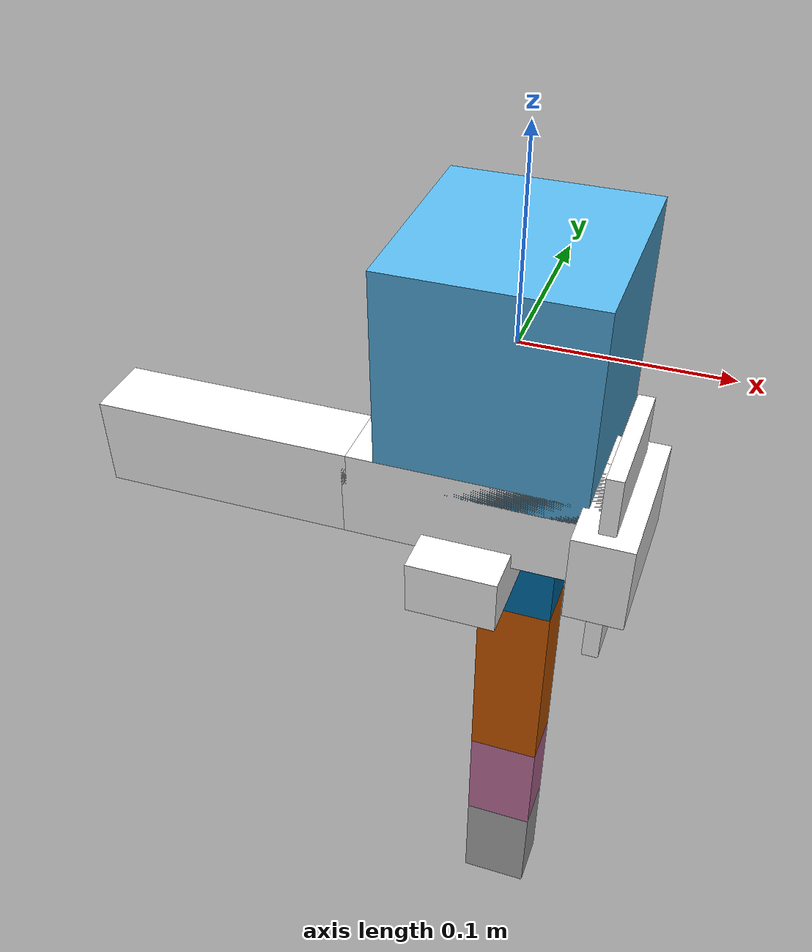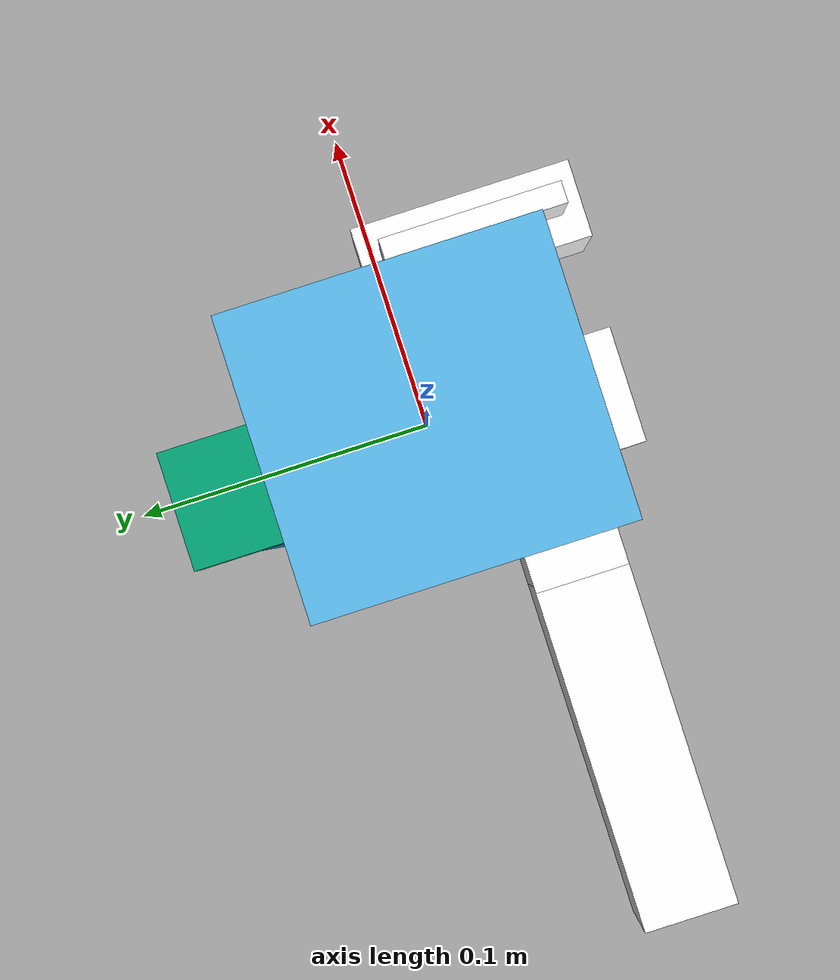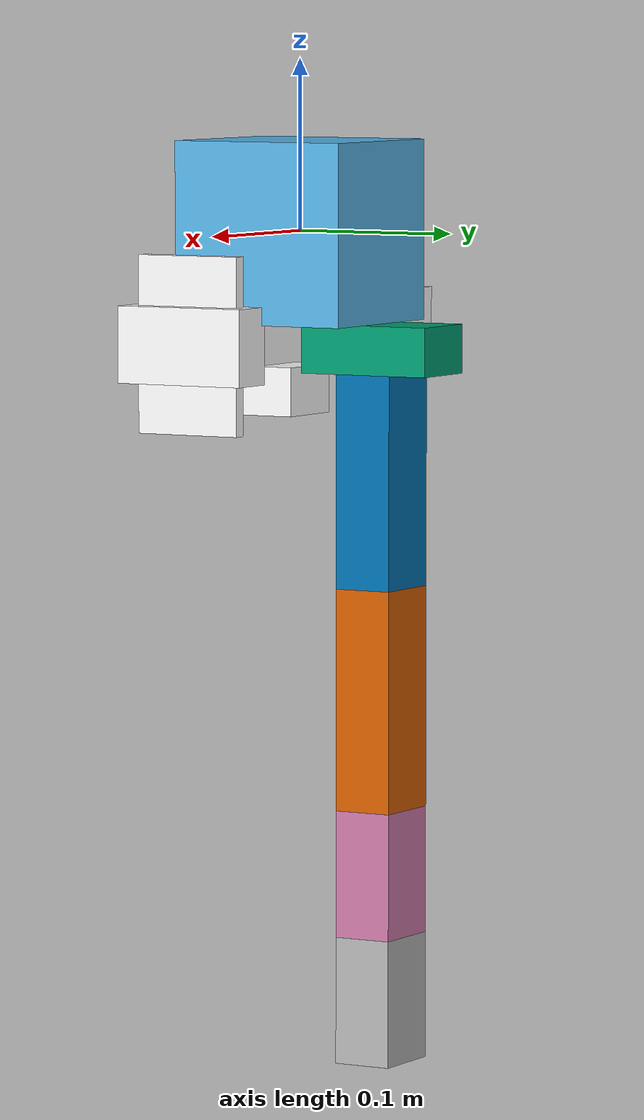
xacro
<?xml version="1.0" ?>
<!-- |    This document was autogenerated by xacro from terop_beta.xacro               | -->
<!-- |    EDITING THIS FILE BY HAND IS NOT RECOMMENDED                                 | -->
<robot name="terop" xmlns:xacro="http://www.ros.org/wiki/xacro">
  <link name="base_link"/>
  <joint name="base_link_to_body" type="fixed">
    <parent link="base_link"/>
    <child link="MP_BODY"/>
  </joint>
  <link name="MP_BODY">
    <inertial>
      <origin xyz="-0.003053 -0.038651 -0.019268"/>
      <mass value="0.97559947"/>
      <inertia ixx="3.1081800" ixy="-0.25460189" ixz="2.0318174" iyy="6.3787776" iyz="0.16417863" izz="5.3316425"/>
    </inertial>
    <visual>
      <!--origin xyz="-0.0235 0 -0.03525" rpy="0 0 0" /-->
      <origin rpy="0 0 0" xyz="0 0 0"/>
      <geometry>
        <box size="0.102 0.109 0.106"/>
      </geometry>
    </visual>
    <collision>
      <geometry>
        <box size="0.102 0.109 0.106"/>
      </geometry>
    </collision>
  </link>
  <link name="MP_PELVIS_L">
    <inertial>
      <origin xyz="0.000000 0.000480 0.018437"/>
      <mass value="0.167"/>
      <inertia ixx="0.12259691" ixy="0.00071127469" ixz="0.00081143913" iyx="0.00071127469" iyy="0.11066637" iyz="-0.0071635476" izx="0.00081143913" izy="-0.0071635476" izz="0.041877668"/>
    </inertial>
    <visual>
      <origin rpy="0 0 0" xyz="0 0 -0.014326"/>
      <geometry>
        <box size="0.045 0.08175 0.028652"/>
      </geometry>
    </visual>
    <collision>
      <origin rpy="0 0 0" xyz="0 0 -0.014326"/>
      <geometry>
        <box size="0.045 0.08175 0.028652"/>
      </geometry>
    </collision>
  </link>
  <link name="MP_THIGH1_L">
    <inertial>
      <origin xyz="0.000079 0.018242 0.013873"/>
      <mass value="0.11904336"/>
      <inertia ixx="0.097950272" ixy="0.0012119368" ixz="-0.00021223016" iyx="0.00122119368" iyy="0.032848287" iyz="-0.0019474021" izx="-0.00021223016" izy="-0.0019474021" izz="0.11493509"/>
    </inertial>
    <visual>
      <origin rpy="0 0 0" xyz="0 0 0"/>
      <geometry>
        <box size="0.001 0.001 0.001"/>
      </geometry>
    </visual>
    <collision>
      <geometry>
        <box size="0.001 0.001 0.001"/>
      </geometry>
    </collision>
  </link>
  <link name="MP_THIGH2_L">
    <inertial>
      <origin xyz="-0.062965 -0.000323 0.000692"/>
      <mass value="0.11904336"/>
      <inertia ixx="0.097950272" ixy="0.0012119368" ixz="-0.00021223016" iyx="0.00122119368" iyy="0.032848287" iyz="-0.0019474021" izx="-0.00021223016" izy="-0.0019474021" izz="0.11493509"/>
    </inertial>
    <visual>
      <origin rpy="0 0 0" xyz="0 0 -0.0625"/>
      <geometry>
        <box size="0.045 0.035 0.125"/>
      </geometry>
    </visual>
    <collision>
      <origin rpy="0 0 0" xyz="0 0 -0.0625"/>
      <geometry>
        <box size="0.045 0.035 0.125"/>
      </geometry>
    </collision>
  </link>
  <link name="MP_TIBIA_L">
    <inertial>
      <origin xyz="-0.053955 0.006548 -0.000592"/>
      <mass value="0.070309794"/>
      <inertia ixx="0.093369608" ixy="-0.00093567395" ixz="-0.00023992085" iyx="-0.00093567395" iyy="0.046295534" iyz="-0.012858493" izx="-0.00023992085" izy="-0.012858493" izz="0.11351516"/>
    </inertial>
    <visual>
      <origin rpy="0 0 0" xyz="0 0 -0.065"/>
      <geometry>
        <box size="0.045 0.035 0.13"/>
      </geometry>
    </visual>
    <collision>
      <origin rpy="0 0 0" xyz="0 0 -0.065"/>
      <geometry>
        <box size="0.045 0.035 0.13"/>
      </geometry>
    </collision>
  </link>
  <link name="MP_ANKLE1_L">
    <inertial>
      <origin xyz="-0.000214 -0.018536 0.013873"/>
      <mass value="0.16710792"/>
      <inertia ixx="0.12079175" ixy="-0.00079781067" ixz="-0.00039322246" iyx="-0.00079781067" iyy="0.10885465" iyz="0.0070770117" izx="-0.00039322246" izy="0.0070770117" izz="0.041871103"/>
    </inertial>
    <visual>
      <origin rpy="0 0 0" xyz="0 0 -0.03725"/>
      <geometry>
        <box size="0.045 0.035 0.0745"/>
      </geometry>
    </visual>
    <collision>
      <geometry>
        <box size="0.045 0.035 0.0745"/>
      </geometry>
    </collision>
  </link>
  <link name="MP_ANKLE2_L">
    <inertial>
      <origin xyz="-0.000214 -0.018536 0.013873"/>
      <mass value="0.16710792"/>
      <inertia ixx="0.12079175" ixy="-0.00079781067" ixz="-0.00039322246" iyx="-0.00079781067" iyy="0.10885465" iyz="0.0070770117" izx="-0.00039322246" izy="0.0070770117" izz="0.041871103"/>
    </inertial>
    <visual>
      <origin rpy="0 0 0" xyz="0 0 -0.03725"/>
      <geometry>
        <box size="0.045 0.035 0.0745"/>
      </geometry>
    </visual>
    <collision>
      <geometry>
        <box size="0.045 0.035 0.0745"/>
      </geometry>
    </collision>
  </link>
  <link name="MP_PELVIS_R">
    <inertial>
      <origin xyz="0.000000 0.000480 0.018437"/>
      <mass value="0.197"/>
      <inertia ixx="0.12259691" ixy="0.00071127469" ixz="0.00081143913" iyx="0.00071127469" iyy="0.11066637" iyz="-0.0071635476" izx="0.00081143913" izy="-0.0071635476" izz="0.041877668"/>
    </inertial>
    <visual>
      <origin rpy="0 0 0" xyz="0 0 0"/>
      <geometry>
        <box size="0.045 0.08175 0.028652"/>
      </geometry>
      <material name="Grey">
        <color rgba="1.00 1.00 1.00 1.0"/>
      </material>
    </visual>
    <collision>
      <geometry>
        <box size="0.045 0.08175 0.028652"/>
      </geometry>
    </collision>
  </link>
  <link name="MP_THIGH1_R">
    <inertial>
      <origin xyz="0.000079 -0.018242 0.0138735"/>
      <mass value="0.11904336"/>
      <inertia ixx="0.097950272" ixy="0.0012119368" ixz="-0.00021223016" iyx="0.00122119368" iyy="0.032848287" iyz="-0.0019474021" izx="-0.00021223016" izy="-0.0019474021" izz="0.11493509"/>
    </inertial>
    <visual>
      <origin rpy="0 0 0" xyz="0 0 0"/>
      <geometry>
        <box size="0.001 0.001 0.001"/>
      </geometry>
      <material name="Grey">
        <color rgba="1.00 1.00 1.00 1.0"/>
      </material>
    </visual>
    <collision>
      <geometry>
        <box size="0.001 0.001 0.001"/>
      </geometry>
    </collision>
  </link>
  <link name="MP_THIGH2_R">
    <inertial>
      <origin xyz="0.062965 -0.000323 0.000692"/>
      <mass value="0.11904336"/>
      <inertia ixx="0.097950272" ixy="0.0012119368" ixz="-0.00021223016" iyx="0.00122119368" iyy="0.032848287" iyz="-0.0019474021" izx="-0.00021223016" izy="-0.0019474021" izz="0.11493509"/>
    </inertial>
    <visual>
      <origin rpy="0 0 0" xyz="0 0 0"/>
      <geometry>
        <box size="0.125 0.035 0.045"/>
      </geometry>
      <material name="Grey">
        <color rgba="1.00 1.00 1.00 1.0"/>
      </material>
    </visual>
    <collision>
      <geometry>
        <box size="0.125 0.035 0.045"/>
      </geometry>
    </collision>
  </link>
  <link name="MP_TIBIA_R">
    <inertial>
      <origin xyz="0.053955 0.006548 -0.000592"/>
      <mass value="0.070309794"/>
      <inertia ixx="0.093369608" ixy="-0.00093567395" ixz="-0.00023992085" iyx="-0.00093567395" iyy="0.046295534" iyz="-0.012858493" izx="-0.00023992085" izy="-0.012858493" izz="0.11351516"/>
    </inertial>
    <visual>
      <origin rpy="0 0 0" xyz="-0.0625 0 0"/>
      <geometry>
        <box size="0.130 0.035 0.045"/>
      </geometry>
      <material name="Grey">
        <color rgba="1.00 1.00 1.00 1.0"/>
      </material>
    </visual>
    <collision>
      <origin rpy="0 0 0" xyz="-0.0625 0 0"/>
      <geometry>
        <box size="0.130 0.035 0.045"/>
      </geometry>
    </collision>
  </link>
  <link name="MP_ANKLE1_R">
    <inertial>
      <origin xyz="-0.000214 -0.018536 -0.013873"/>
      <mass value="0.16710792"/>
      <inertia ixx="0.12079175" ixy="-0.00079781067" ixz="-0.00039322246" iyx="-0.00079781067" iyy="0.10885465" iyz="0.0070770117" izx="-0.00039322246" izy="0.0070770117" izz="0.041871103"/>
    </inertial>
    <visual>
      <origin rpy="0 0 0" xyz="0 0 0"/>
      <geometry>
        <box size="0.028652 0.08175 0.045"/>
      </geometry>
      <material name="Grey">
        <color rgba="1.00 1.00 1.00 1.0"/>
      </material>
    </visual>
    <collision>
      <geometry>
        <box size="0.028652 0.08175 0.045"/>
      </geometry>
    </collision>
  </link>
  <link name="MP_ANKLE2_R">
    <inertial>
      <origin xyz="0.025995 -0.009506 -0.000503"/>
      <mass value="0.0794462"/>
      <inertia ixx="0.12079175" ixy="-0.00079781067" ixz="-0.00039322246" iyx="-0.00079781067" iyy="0.10885465" iyz="0.0070770117" izx="-0.00039322246" izy="0.0070770117" izz="0.041871103"/>
    </inertial>
    <visual>
      <origin rpy="0 0 0" xyz="0 0 0"/>
      <geometry>
        <box size="0.008 0.066 0.104"/>
      </geometry>
      <material name="Grey">
        <color rgba="1.00 1.00 1.00 1.0"/>
      </material>
    </visual>
    <collision>
      <geometry>
        <box size="0.008 0.066 0.104"/>
      </geometry>
    </collision>
  </link>
  <joint name="j_pelvis_l" type="revolute">
    <parent link="MP_BODY"/>
    <child link="MP_PELVIS_L"/>
    <origin rpy="0 0 0" xyz="0 0.0545 -0.053"/>
    <axis xyz="0 0 1"/>
    <limit effort="10" lower="-2.6179939" upper="2.6179939" velocity="5.6548668"/>
  </joint>
  <joint name="j_thigh1_l" type="revolute">
    <parent link="MP_PELVIS_L"/>
    <child link="MP_THIGH1_L"/>
    <origin rpy="0 0 0" xyz="0 0 -0.028652"/>
    <axis xyz="0 0 1"/>
    <limit effort="10" lower="-2.6179939" upper="2.6179939" velocity="5.6548668"/>
  </joint>
  <joint name="j_thigh2_l" type="revolute">
    <parent link="MP_THIGH1_L"/>
    <child link="MP_THIGH2_L"/>
    <origin rpy="0 0 0" xyz="0 0 0"/>
    <axis xyz="0 1 0"/>
    <limit effort="10" lower="-2.6179939" upper="2.6179939" velocity="5.6548668"/>
  </joint>
  <joint name="j_tibia_l" type="revolute">
    <parent link="MP_THIGH2_L"/>
    <child link="MP_TIBIA_L"/>
    <origin rpy="0 0 0" xyz="0 0 -0.125"/>
    <axis xyz="0 1 0"/>
    <limit effort="10" lower="-2.6179939" upper="2.6179939" velocity="5.6548668"/>
  </joint>
  <joint name="j_ankle1_l" type="revolute">
    <parent link="MP_TIBIA_L"/>
    <child link="MP_ANKLE1_L"/>
    <origin rpy="0 0 0" xyz="0 0 -0.13"/>
    <axis xyz="0 1 0"/>
    <limit effort="10" lower="-2.6179939" upper="2.6179939" velocity="5.6548668"/>
  </joint>
  <joint name="j_ankle2_l" type="revolute">
    <parent link="MP_ANKLE1_L"/>
    <child link="MP_ANKLE2_L"/>
    <origin rpy="0 0 0" xyz="0 0 -0.0745"/>
    <axis xyz="0 1 0"/>
    <limit effort="10" lower="-2.6179939" upper="2.6179939" velocity="5.6548668"/>
  </joint>
  <joint name="j_pelvis_r" type="revolute">
    <parent link="MP_BODY"/>
    <child link="MP_PELVIS_R"/>
    <origin rpy="0 0 0" xyz="-0.005 -0.037 -0.09355"/>
    <axis xyz="0 0 1"/>
    <limit effort="10" lower="-2.6179939" upper="2.6179939" velocity="5.6548668"/>
  </joint>
  <joint name="j_thigh1_r" type="revolute">
    <parent link="MP_PELVIS_R"/>
    <child link="MP_THIGH1_R"/>
    <origin rpy="0 0 0" xyz="0 0 0.028652"/>
    <axis xyz="0 0 1"/>
    <limit effort="10" lower="-2.6179939" upper="2.6179939" velocity="5.6548668"/>
  </joint>
  <joint name="j_thigh2_r" type="revolute">
    <parent link="MP_THIGH1_R"/>
    <child link="MP_THIGH2_R"/>
    <origin rpy="0 0 0" xyz="0 0 0"/>
    <axis xyz="0 0 1"/>
    <limit effort="10" lower="-2.6179939" upper="2.6179939" velocity="5.6548668"/>
  </joint>
  <joint name="j_tibia_r" type="revolute">
    <parent link="MP_THIGH2_R"/>
    <child link="MP_TIBIA_R"/>
    <origin rpy="0 0 0" xyz="-0.0625 0 0"/>
    <axis xyz="0 0 1"/>
    <limit effort="10" lower="-2.6179939" upper="2.6179939" velocity="5.6548668"/>
  </joint>
  <joint name="j_ankle1_r" type="revolute">
    <parent link="MP_TIBIA_R"/>
    <child link="MP_ANKLE1_R"/>
    <origin rpy="0 0 0" xyz="0.130 0 0"/>
    <axis xyz="0 0 1"/>
    <limit effort="10" lower="-2.6179939" upper="2.6179939" velocity="5.6548668"/>
  </joint>
  <joint name="j_ankle2_r" type="revolute">
    <parent link="MP_ANKLE1_R"/>
    <child link="MP_ANKLE2_R"/>
    <origin rpy="0 0 0" xyz="0 0 0"/>
    <axis xyz="0 0 1"/>
    <limit effort="10" lower="-2.6179939" upper="2.6179939" velocity="5.6548668"/>
  </joint>
</robot>
